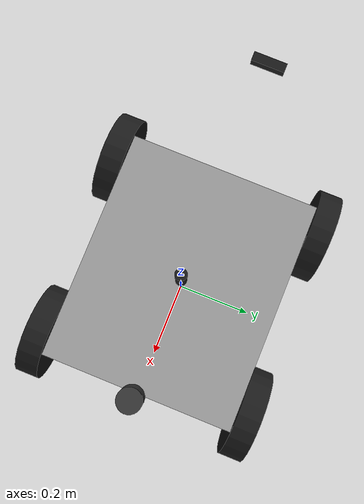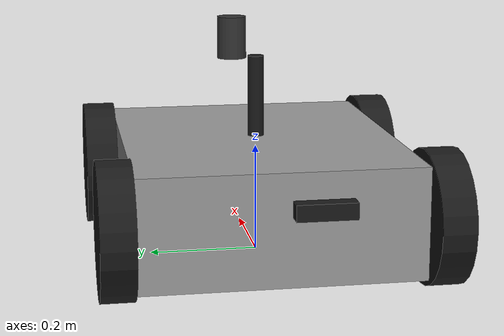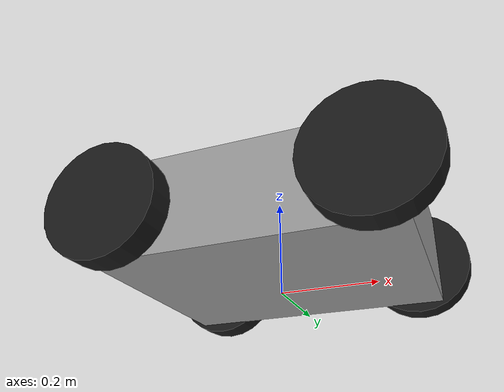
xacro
<?xml version="1.0"?>
<robot name="lunabot" xmlns:xacro="http://www.ros.org/wiki/xacro">
<!-- Include the TiM781S macro -->
  <xacro:include filename="$(find lunabotics_sim)/urdf/lidar.urdf.xacro" />

  <!-- ===================== Parameters ===================== -->
  <!-- Placeholder dimensions only — swap in real Lunabotics chassis/wheel
       geometry once the mechanical design is locked. -->
  <xacro:property name="chassis_length" value="0.60"/>
  <xacro:property name="chassis_width"  value="0.5"/>
  <xacro:property name="chassis_height" value="0.2"/>
  <xacro:property name="chassis_mass"   value="15.0"/>

  <xacro:property name="wheel_radius" value="0.12"/>
  <xacro:property name="wheel_width"  value="0.06"/>
  <xacro:property name="wheel_mass"   value="1.5"/>

  <!-- Wheel centers set slightly outside the chassis footprint, at a height
       so the wheel radius reaches the ground when chassis origin sits at
       wheel_radius above ground. -->
  <xacro:property name="wheel_x_offset" value="${chassis_length/2 - 0.05}"/>
  <xacro:property name="wheel_y_offset" value="${chassis_width/2 + wheel_width/2}"/>
  <xacro:property name="wheel_z_offset" value="0.0"/>

  <!-- Camera mast: raises the RGB-D camera above the chassis for a better
       vantage point, and tilts it downward to look at terrain ahead. -->
  <xacro:property name="mast_radius" value="0.015"/>
  <xacro:property name="mast_height" value="0.15"/>
  <xacro:property name="mast_mass"   value="0.05"/>
  <!-- Positive rotation about Y tilts the link's +X (forward) axis toward
       -Z (downward) in this X-forward/Z-up convention. ~20 degrees. -->
  <xacro:property name="camera_tilt" value="0.3491"/>

  <material name="chassis_grey">
    <color rgba="0.6 0.6 0.6 1.0"/>
  </material>
  <material name="wheel_black">
    <color rgba="0.1 0.1 0.1 1.0"/>
  </material>

  <!-- ===================== Macros ===================== -->

  <xacro:macro name="box_inertia" params="mass x y z">
    <inertia
      ixx="${(1/12) * mass * (y*y + z*z)}" ixy="0.0" ixz="0.0"
      iyy="${(1/12) * mass * (x*x + z*z)}" iyz="0.0"
      izz="${(1/12) * mass * (x*x + y*y)}"/>
  </xacro:macro>

  <xacro:macro name="cylinder_inertia" params="mass r h">
    <inertia
      ixx="${(1/12) * mass * (3*r*r + h*h)}" ixy="0.0" ixz="0.0"
      iyy="${(1/12) * mass * (3*r*r + h*h)}" iyz="0.0"
      izz="${0.5 * mass * r * r}"/>
  </xacro:macro>

  <xacro:macro name="wheel" params="prefix parent xyz">
    <link name="${prefix}_wheel_link">
      <visual>
        <origin xyz="0 0 0" rpy="1.5707963267948966 0 0"/>
        <geometry>
          <cylinder radius="${wheel_radius}" length="${wheel_width}"/>
        </geometry>
        <material name="wheel_black"/>
      </visual>
      <collision>
        <origin xyz="0 0 0" rpy="1.5707963267948966 0 0"/>
        <geometry>
          <cylinder radius="${wheel_radius}" length="${wheel_width}"/>
        </geometry>
      </collision>
      <inertial>
        <mass value="${wheel_mass}"/>
        <inertia ixx="${(1/12)*wheel_mass*(3*wheel_radius*wheel_radius + wheel_width*wheel_width)}" ixy="0" ixz="0"
         iyy="${0.5*wheel_mass*wheel_radius*wheel_radius}" iyz="0"
         izz="${(1/12)*wheel_mass*(3*wheel_radius*wheel_radius + wheel_width*wheel_width)}"/>
      </inertial>
    </link>

     <joint name="${prefix}_wheel_joint" type="continuous">
      <parent link="${parent}"/>
      <child link="${prefix}_wheel_link"/>
      <origin xyz="${xyz}" rpy="0 0 0"/>
      <axis xyz="0 1 0"/>
    </joint>
  </xacro:macro>

  <xacro:property name="steer_limit"  value="0.6"/>  <!-- rad, joint hard limit tune later -->

  <!-- ===================== Base / chassis ===================== -->

  <link name="base_link"/>

  <joint name="base_to_chassis" type="fixed">
    <parent link="base_link"/>
    <child link="chassis_link"/>
    <!-- chassis origin sits one wheel-radius above base_link so wheels touch ground -->
    <origin xyz="0 0 ${wheel_radius}" rpy="0 0 0"/>
  </joint>

  <link name="chassis_link">
    <visual>
      <origin xyz="0 0 0" rpy="0 0 0"/>
      <geometry>
        <box size="${chassis_length} ${chassis_width} ${chassis_height}"/>
      </geometry>
      <material name="chassis_grey"/>
    </visual>
    <collision>
      <origin xyz="0 0 0" rpy="0 0 0"/>
      <geometry>
        <box size="${chassis_length} ${chassis_width} ${chassis_height}"/>
      </geometry>
    </collision>
    <inertial>
      <mass value="${chassis_mass}"/>
      <xacro:box_inertia mass="${chassis_mass}" x="${chassis_length}" y="${chassis_width}" z="${chassis_height}"/>
    </inertial>
  </link>

  <!-- ===================== LIDAR ===================== -->
  <xacro:sick_tim781s name="front_laser" parent="chassis_link">
    <!-- Adjust xyz/rpy to position it exactly on your mount -->
    <origin xyz="0.30 0.0 0.2" rpy="0 0 0" />
  </xacro:sick_tim781s>

  <!-- ===================== Wheels ===================== -->
   <!-- Front: steered -->
  <xacro:wheel prefix="front_left"  parent="chassis_link"
             xyz="${wheel_x_offset} ${wheel_y_offset} ${wheel_z_offset}"/>
  <xacro:wheel prefix="front_right" parent="chassis_link"
             xyz="${wheel_x_offset} ${-wheel_y_offset} ${wheel_z_offset}"/>

  <!-- Rear: fixed direction -->
  <xacro:wheel prefix="rear_left"  parent="chassis_link"
               xyz="${-wheel_x_offset} ${wheel_y_offset} ${wheel_z_offset}"/>
  <xacro:wheel prefix="rear_right" parent="chassis_link"
               xyz="${-wheel_x_offset} ${-wheel_y_offset} ${wheel_z_offset}"/>
  <!-- ===================== Camera mast ===================== -->
  <!-- Vertical cylindrical post that raises the camera above the chassis
       deck for a better vantage point over the terrain ahead. -->

  <link name="camera_mast_link">
    <visual>
      <origin xyz="0 0 0" rpy="0 0 0"/>
      <geometry>
        <cylinder radius="${mast_radius}" length="${mast_height}"/>
      </geometry>
      <material name="wheel_black"/>
    </visual>
    <collision>
      <origin xyz="0 0 0" rpy="0 0 0"/>
      <geometry>
        <cylinder radius="${mast_radius}" length="${mast_height}"/>
      </geometry>
    </collision>
    <inertial>
      <mass value="${mast_mass}"/>
      <xacro:cylinder_inertia mass="${mast_mass}" r="${mast_radius}" h="${mast_height}"/>
    </inertial>
  </link>

  <joint name="chassis_to_mast" type="fixed">
    <parent link="chassis_link"/>
    <child link="camera_mast_link"/>
    <!-- mast base sits flush on top of the chassis; mast_link origin is its
         own center, so raise by half the chassis height plus half the mast -->
    <origin xyz="0 0 ${chassis_height/2 + mast_height/2}" rpy="0 0 0"/>
  </joint>

  <!-- ===================== RGB-D Camera (RealSense-style) ===================== -->
  <!-- Mounted on top of the mast, tilted downward, simulating a
       RealSense D435-style depth camera: RGB image + depth image + point
       cloud, all published together. -->
  <xacro:property name="camera_mount_height" value="0.02"/>

  <link name="camera_link">
    <visual>
      <origin xyz="0 0 0" rpy="0 0 0"/>
      <geometry>
        <box size="0.025 0.09 0.025"/>
      </geometry>
      <material name="wheel_black"/>
    </visual>
    <collision>
      <origin xyz="0 0 0" rpy="0 0 0"/>
      <geometry>
        <box size="0.025 0.09 0.025"/>
      </geometry>
    </collision>
    <inertial>
      <mass value="0.072"/>
      <xacro:box_inertia mass="0.072" x="0.025" y="0.09" z="0.025"/>
    </inertial>
  </link>

  <joint name="mast_to_camera" type="fixed">
    <parent link="chassis_link"/> <!-- changed this to be just on the chassis for simplicity-->
    <child link="camera_link"/>
    <!-- top of the mast, tilted downward by camera_tilt about Y -->
    <origin xyz="-0.6 0 0.12" rpy="0 0 3.141592653589793"/>
  </joint>

  <!-- Optical frame: camera/ROS convention (Z-forward, X-right, Y-down) is
       rotated relative to the link's URDF convention (X-forward, Z-up). -->
  <link name="camera_optical_link"/>

  <joint name="camera_to_optical" type="fixed">
    <parent link="camera_link"/>
    <child link="camera_optical_link"/>
    <origin xyz="0 0 0" rpy="-1.5707963267948966 0 -1.5707963267948966"/>
  </joint>

  <gazebo reference="camera_link">
    <sensor name="realsense_depth_camera" type="rgbd_camera">
      <gz_frame_id>camera_optical_link</gz_frame_id>
      <always_on>true</always_on>
      <update_rate>30</update_rate>
      <visualize>true</visualize>
      <topic>camera</topic>
      <camera>
        <optical_frame_id>camera_optical_link</optical_frame_id>
        <horizontal_fov>1.211</horizontal_fov>
        <image>
          <width>640</width>
          <height>480</height>
          <format>R8G8B8</format>
        </image>
        <clip>
          <near>0.1</near>
          <far>50</far>
        </clip>
        <depth_camera>
          <clip>
            <near>0.1</near>
            <far>10.0</far>
          </clip>
        </depth_camera>
      </camera>
    </sensor>
  </gazebo>

  <!-- ===================== Gazebo plugins ===================== -->
  <!-- Joint-state publishing (so /joint_states is available) plus a
       DiffDrive system plugin so the wheels actually respond to velocity
       commands. 4-wheel skid-steer: two joints per side. -->
  <xacro:property name="track_factor" value="1.0"/>
   <!-- set through this equation:
   W_eff = W * (1 + L^2/W^2) -->
  <xacro:property name="wheel_separation_eff"
                  value="${(chassis_width + wheel_width) * track_factor}"/>

    <gazebo>
    <plugin filename="gz-sim-joint-state-publisher-system"
            name="gz::sim::systems::JointStatePublisher">
      <update_rate>50</update_rate>
      <joint_name>front_left_wheel_joint</joint_name>
      <joint_name>front_right_wheel_joint</joint_name>
      <joint_name>rear_left_wheel_joint</joint_name>
      <joint_name>rear_right_wheel_joint</joint_name>
    </plugin>

    <plugin filename="gz-sim-diff-drive-system"
          name="gz::sim::systems::DiffDrive">
    <left_joint>front_left_wheel_joint</left_joint>
    <left_joint>rear_left_wheel_joint</left_joint>
    <right_joint>front_right_wheel_joint</right_joint>
    <right_joint>rear_right_wheel_joint</right_joint>

    <wheel_separation>${wheel_separation_eff}</wheel_separation>
    <wheel_radius>${wheel_radius}</wheel_radius>

    <topic>/cmd_vel</topic>

    <max_linear_velocity>1.0</max_linear_velocity>
    <max_angular_velocity>1.5</max_angular_velocity>
    <max_linear_acceleration>1.0</max_linear_acceleration>
    <max_angular_acceleration>2.0</max_angular_acceleration>
  </plugin>

      <!-- Smooth commands so wheels don't slip/spin out on start/stop -->

    <!-- cheats and uses gazebo's real tracker of position for odom -->
    <plugin filename="gz-sim-odometry-publisher-system"
          name="gz::sim::systems::OdometryPublisher">
    <odom_frame>odom</odom_frame>
    <robot_base_frame>base_link</robot_base_frame>
    <odom_publish_frequency>50</odom_publish_frequency>
    <odom_topic>/odom</odom_topic>
    <tf_topic>/tf</tf_topic>
    <dimensions>2</dimensions>
  </plugin>
  </gazebo>

    <xacro:macro name="wheel_friction" params="link">
    <gazebo reference="${link}">
      <mu1>0.5</mu1>
      <mu2>0.5</mu2>
      <kp>1000000.0</kp>
      <kd>100.0</kd>
    </gazebo>
  </xacro:macro>

  <xacro:wheel_friction link="front_left_wheel_link"/>
  <xacro:wheel_friction link="front_right_wheel_link"/>
  <xacro:wheel_friction link="rear_left_wheel_link"/>
  <xacro:wheel_friction link="rear_right_wheel_link"/>

   <!-- Ackermann plugin -->

</robot>

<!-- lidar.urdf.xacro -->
<robot xmlns:xacro="http://ros.org/wiki/xacro">

  <xacro:macro name="sick_tim781s" params="name parent *origin">

    <!-- Mounting Joint -->
    <joint name="${name}_joint" type="fixed">
      <xacro:insert_block name="origin" />
      <parent link="${parent}" />
      <child link="${name}_link" />
    </joint>

    <!-- Physical Base Link -->
    <link name="${name}_link">
      <visual>
        <origin xyz="0 0 0.043" rpy="0 0 0" />
        <geometry>
          <cylinder radius="0.03" length="0.086"/>
        </geometry>
        <material name="dark_grey">
          <color rgba="0.2 0.2 0.2 1.0"/>
        </material>
      </visual>
      <collision>
        <origin xyz="0 0 0.043" rpy="0 0 0" />
        <geometry>
          <cylinder radius="0.035" length="0.090"/>
        </geometry>
      </collision>
      <inertial>
        <origin xyz="0 0 0.043" rpy="0 0 0" />
        <mass value="0.250" /> <!-- Actual TiM781S weight is ~250g -->
        <inertia ixx="0.0001" ixy="0" ixz="0" iyy="0.0001" iyz="0" izz="0.0001" />
      </inertial>
    </link>

    <!-- Optical Emission Joint & Link -->
    <!-- The actual laser pulses exit ~60mm above the base mount -->
    <joint name="${name}_optical_joint" type="fixed">
      <origin xyz="0 0 0.06" rpy="0 0 0" />
      <parent link="${name}_link" />
      <child link="${name}_optical_link" />
    </joint>
    <link name="${name}_optical_link" />

    <!-- Gazebo Sim (Ignition) Sensor Plugin -->
    <gazebo reference="${name}_link">
      <sensor name="${name}" type="gpu_lidar">
        <topic>/scan</topic>
        <update_rate>15.0</update_rate>
        <gz_frame_id>${name}_optical_link</gz_frame_id>
        <lidar>
          <scan>
            <horizontal>
              <samples>811</samples> <!-- 270 deg / 0.33 deg resolution -->
              <resolution>1</resolution>
              <min_angle>-2.35619</min_angle> <!-- -135 degrees -->
              <max_angle>2.35619</max_angle>  <!-- +135 degrees -->
            </horizontal>
          </scan>
          <range>
            <min>0.05</min>
            <max>25.0</max>
            <resolution>0.001</resolution>
          </range>
          <noise>
            <type>gaussian</type>
            <mean>0.0</mean>
            <stddev>0.01</stddev> <!-- Typical 10mm statistical error -->
          </noise>
        </lidar>
        <always_on>1</always_on>
        <visualize>true</visualize>
      </sensor>
    </gazebo>

  </xacro:macro>
</robot>
